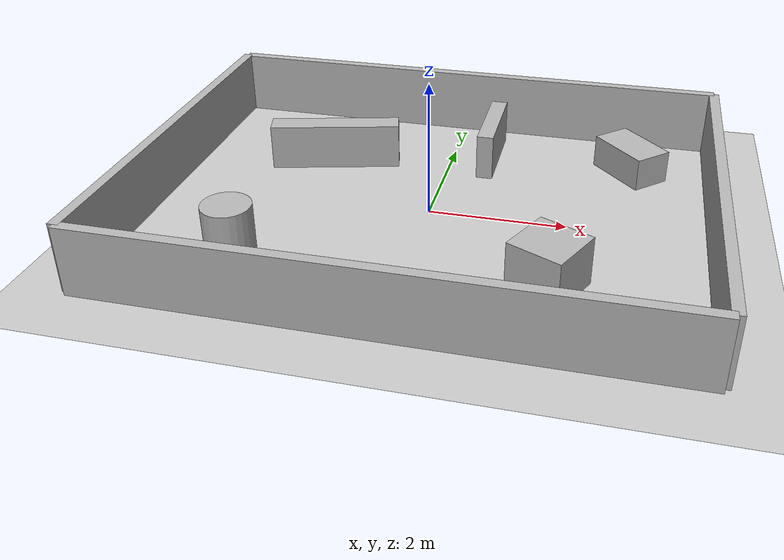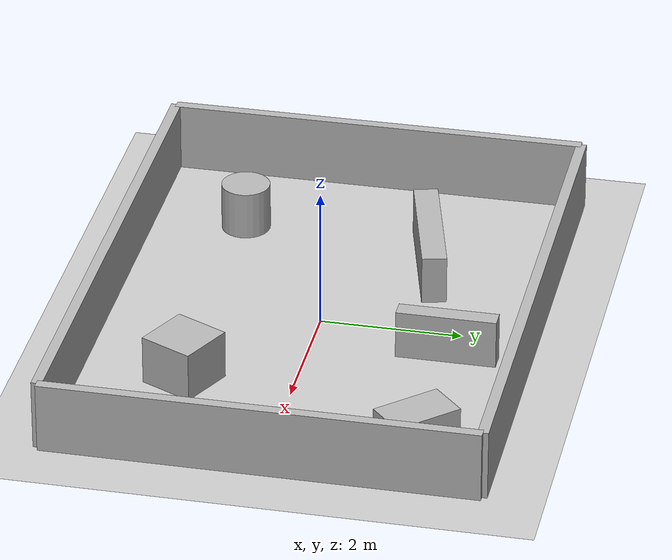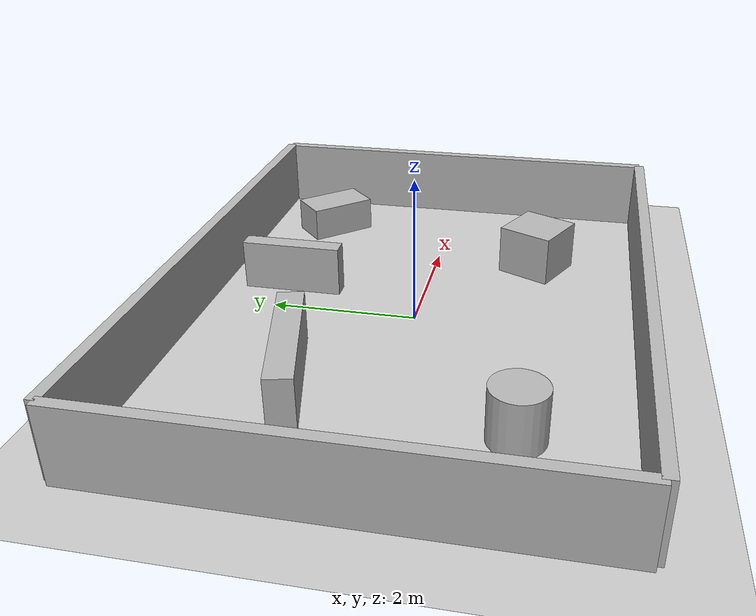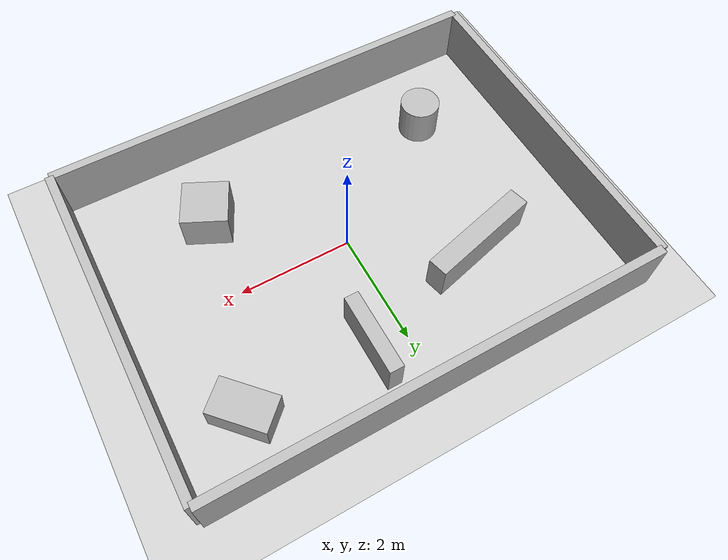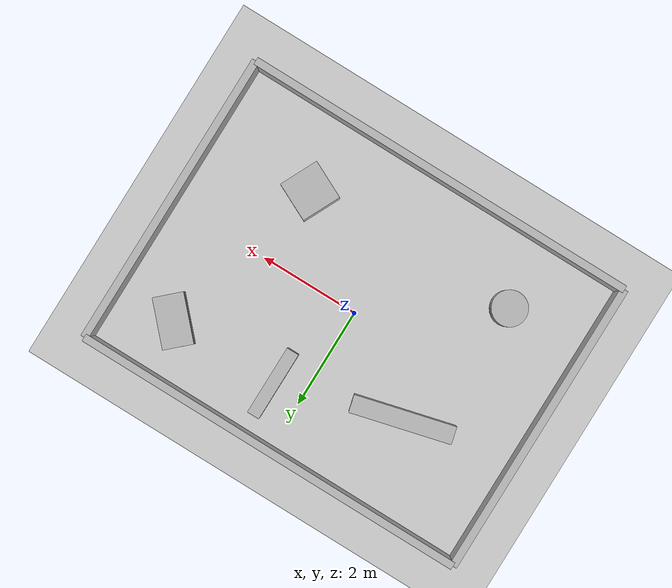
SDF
<?xml version="1.0" ?>
<sdf version="1.6">
  <world name="asymmetric_greenhouse">

    <include>
      <uri>model://sun</uri>
    </include>

    <include>
      <uri>model://ground_plane</uri>
    </include>

    <!-- Physics -->
    <physics name="default_physics" default="0" type="ode">
      <max_step_size>0.001</max_step_size>
      <real_time_factor>1.0</real_time_factor>
      <real_time_update_rate>1000</real_time_update_rate>
    </physics>

    <!-- OUTER WALLS           -->
    <!-- Room size: 8 m x 6 m  -->

    <!-- North wall -->
    <model name="wall_north">
      <static>true</static>
      <pose>0 3 0.5 0 0 0</pose>
      <link name="link">
        <collision name="collision">
          <geometry><box><size>8 0.15 1</size></box></geometry>
        </collision>
        <visual name="visual">
          <geometry><box><size>8 0.15 1</size></box></geometry>
        </visual>
      </link>
    </model>

    <!-- South wall -->
    <model name="wall_south">
      <static>true</static>
      <pose>0 -3 0.5 0 0 0</pose>
      <link name="link">
        <collision name="collision">
          <geometry><box><size>8 0.15 1</size></box></geometry>
        </collision>
        <visual name="visual">
          <geometry><box><size>8 0.15 1</size></box></geometry>
        </visual>
      </link>
    </model>

    <!-- East wall -->
    <model name="wall_east">
      <static>true</static>
      <pose>4 0 0.5 0 0 0</pose>
      <link name="link">
        <collision name="collision">
          <geometry><box><size>0.15 6 1</size></box></geometry>
        </collision>
        <visual name="visual">
          <geometry><box><size>0.15 6 1</size></box></geometry>
        </visual>
      </link>
    </model>

    <!-- West wall -->
    <model name="wall_west">
      <static>true</static>
      <pose>-4 0 0.5 0 0 0</pose>
      <link name="link">
        <collision name="collision">
          <geometry><box><size>0.15 6 1</size></box></geometry>
        </collision>
        <visual name="visual">
          <geometry><box><size>0.15 6 1</size></box></geometry>
        </visual>
      </link>
    </model>

    <!-- ASYMMETRIC OBSTACLES  -->

    <!-- Long rectangular obstacle, shifted left -->
    <model name="obstacle_long_left">
      <static>true</static>
      <pose>-1.8 1.2 0.35 0 0 0.25</pose>
      <link name="link">
        <collision name="collision">
          <geometry><box><size>2.0 0.35 0.7</size></box></geometry>
        </collision>
        <visual name="visual">
          <geometry><box><size>2.0 0.35 0.7</size></box></geometry>
        </visual>
      </link>
    </model>

    <!-- Short block on the right -->
    <model name="obstacle_short_right">
      <static>true</static>
      <pose>1.9 -1.5 0.35 0 0 -0.45</pose>
      <link name="link">
        <collision name="collision">
          <geometry><box><size>0.8 0.8 0.7</size></box></geometry>
        </collision>
        <visual name="visual">
          <geometry><box><size>0.8 0.8 0.7</size></box></geometry>
        </visual>
      </link>
    </model>

    <!-- Thin vertical wall-like obstacle -->
    <model name="obstacle_thin_column_wall">
      <static>true</static>
      <pose>0.6 1.9 0.35 0 0 1.57</pose>
      <link name="link">
        <collision name="collision">
          <geometry><box><size>1.4 0.25 0.7</size></box></geometry>
        </collision>
        <visual name="visual">
          <geometry><box><size>1.4 0.25 0.7</size></box></geometry>
        </visual>
      </link>
    </model>

    <!-- Cylindrical obstacle -->
    <model name="obstacle_cylinder">
      <static>true</static>
      <pose>-2.4 -1.6 0.35 0 0 0</pose>
      <link name="link">
        <collision name="collision">
          <geometry>
            <cylinder>
              <radius>0.35</radius>
              <length>0.7</length>
            </cylinder>
          </geometry>
        </collision>
        <visual name="visual">
          <geometry>
            <cylinder>
              <radius>0.35</radius>
              <length>0.7</length>
            </cylinder>
          </geometry>
        </visual>
      </link>
    </model>

    <!-- Small block near one corner -->
    <model name="obstacle_corner_box">
      <static>true</static>
      <pose>2.8 1.9 0.25 0 0 0.75</pose>
      <link name="link">
        <collision name="collision">
          <geometry><box><size>0.6 1.0 0.5</size></box></geometry>
        </collision>
        <visual name="visual">
          <geometry><box><size>0.6 1.0 0.5</size></box></geometry>
        </visual>
      </link>
    </model>

  </world>
</sdf>
